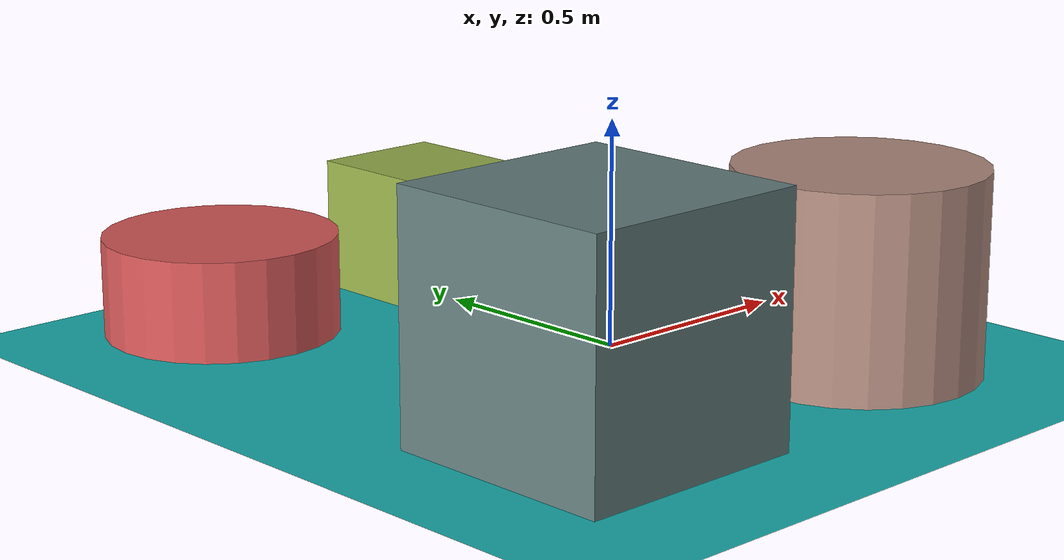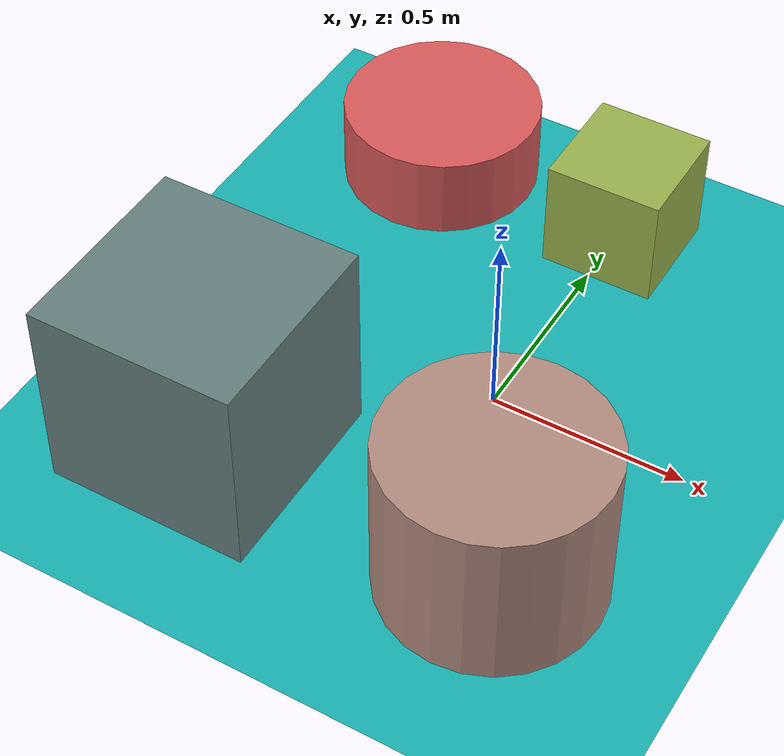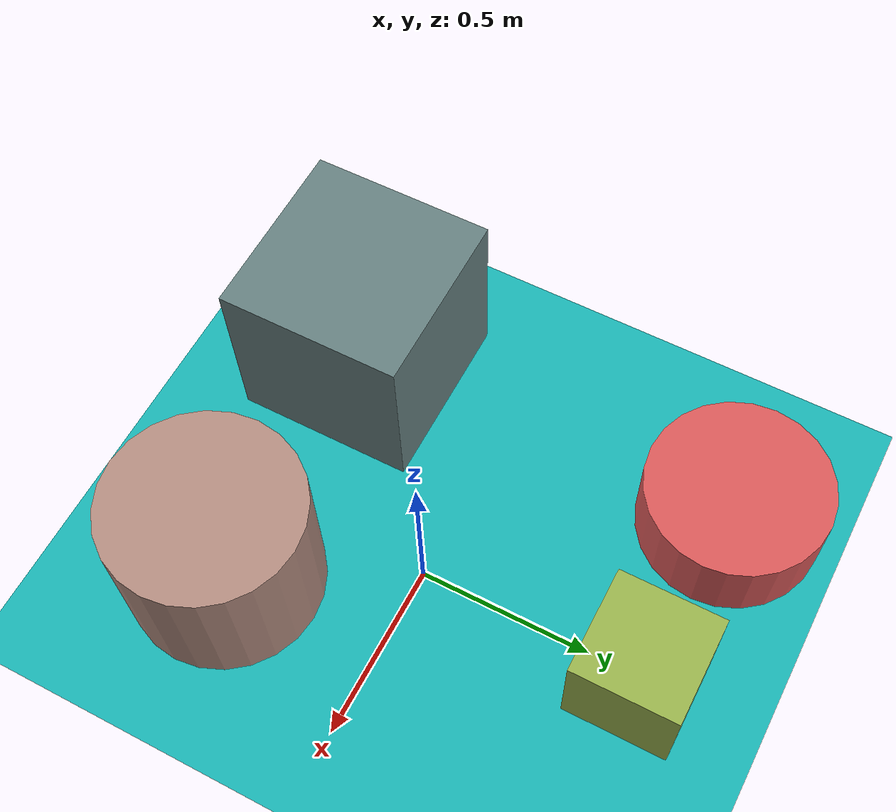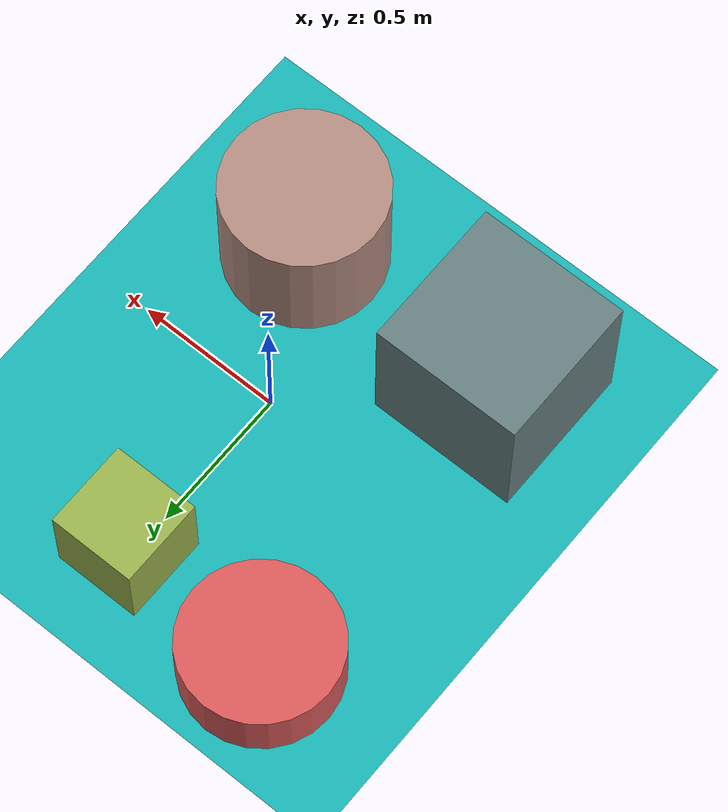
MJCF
<mujoco>
   <asset>
<texture type="skybox" builtin="gradient" rgb1="0.8 0.1 0.4" rgb2="0.7 0.1 0.5" width="256" height="256"/>
<texture name="checker_0" builtin="checker" type="2d" rgb1="0.9 0.2 0.3" rgb2="0.5 0.9 0.7" width="200" height="200"/>
<texture name="flat_1" builtin="flat" rgb1="0.4 0.5 0.5" rgb2="0.4 0.5 0.5"  width="200" height="200"/>
<texture name="flat_2" builtin="flat" rgb1="0.6 0.7 0.3" rgb2="0.6 0.7 0.3"  width="200" height="200"/>
<texture name="checker_3" builtin="checker" type="2d" rgb1="0.8 0.1 0.3" rgb2="0.9 0.6 0.4" width="200" height="200"/><material name="checker_0_mat" reflectance="0" texrepeat="6 6" texture="checker_0" texuniform="false" />
<material name="flat_1_mat" reflectance="0" texture="flat_1" texuniform="true"/>
<material name="flat_2_mat" reflectance="0" texture="flat_2" texuniform="true"/>
<material name="checker_3_mat" reflectance="0" texrepeat="8 8" texture="checker_3" texuniform="false" />
   </asset>

   <worldbody>
      <light diffuse=".9 .9 .9" pos="0 0 3" dir="0 0 -1"/>
     <geom type="plane" size="1 1 0.1" rgba="0.1 0.7 0.7 1"/>
<geom type="cylinder" pos="0.25 -0.47 0.22" size="0.27 0.22 0.22" material="checker_0_mat" />
<geom type="box" pos="-0.51 -0.46 0.26" size="0.26 0.26 0.26" material="flat_1_mat" />
<geom type="box" pos="0.02 0.65 0.15" size="0.15 0.15 0.15" material="flat_2_mat" />
<geom type="cylinder" pos="-0.53 0.68 0.11" size="0.26 0.11 0.11" material="checker_3_mat" /><camera euler="60 0 180" fovy="60" name="camera_a" pos="0 -1.5 1"></camera>   </worldbody>
</mujoco>
